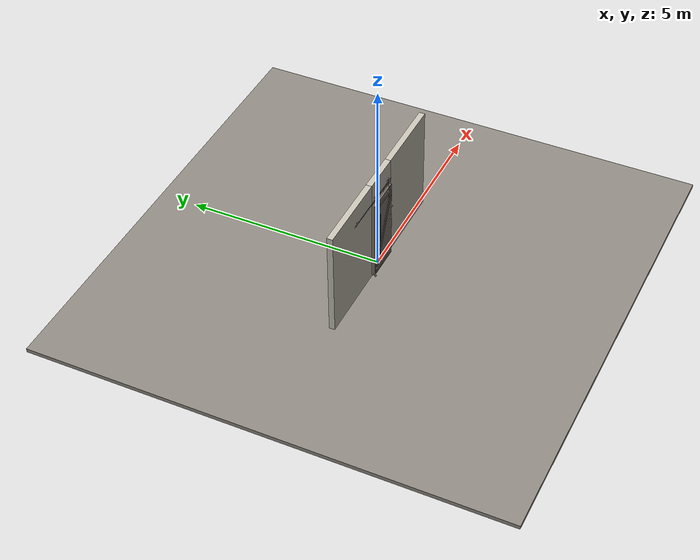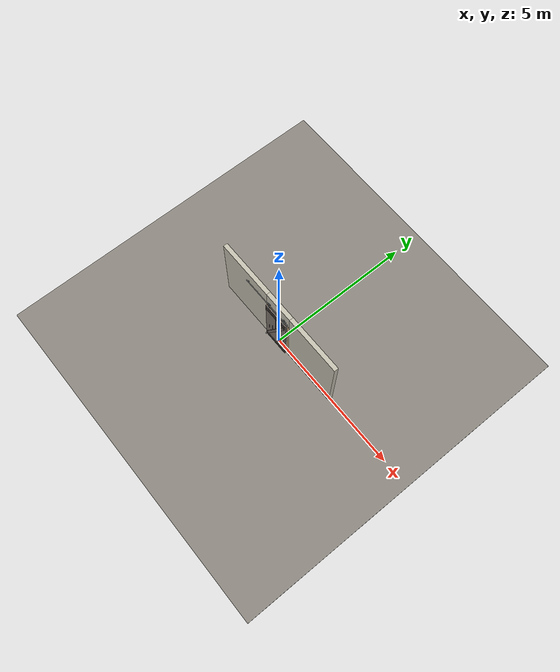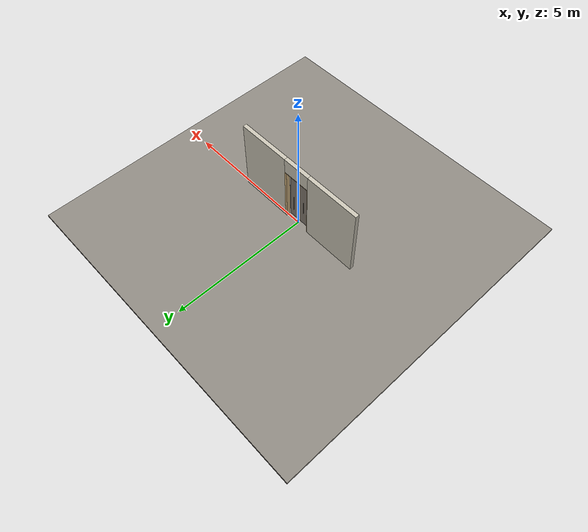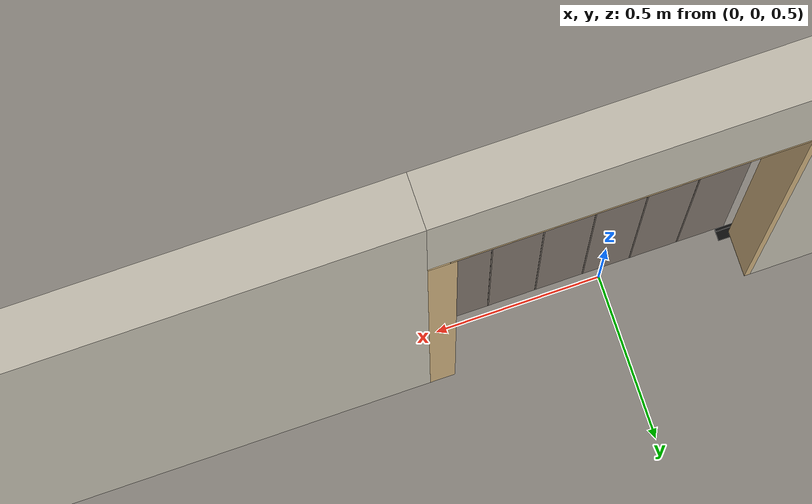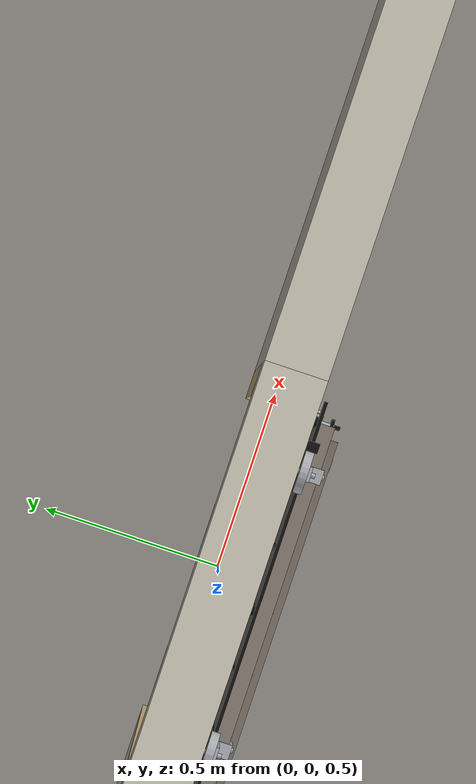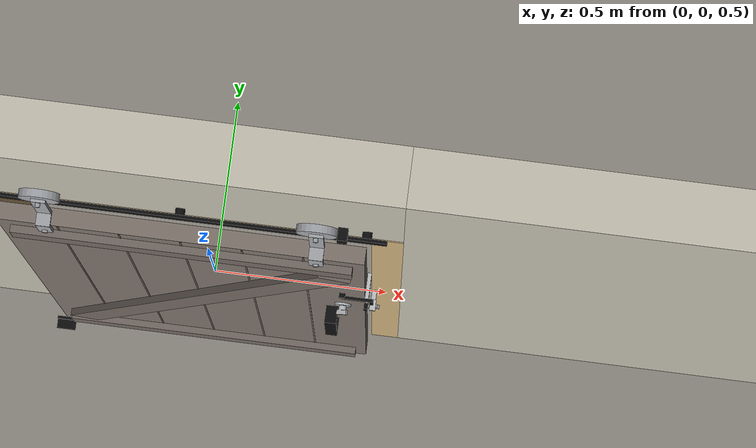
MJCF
<?xml version="1.0" ?>
<mujoco model="db0151_sliding_single_full">
  <compiler angle="radian" meshdir="../../hardware" texturedir="../../textures" autolimits="true" inertiafromgeom="false"/>
  <option timestep="0.002" integrator="implicitfast" cone="elliptic" impratio="10" noslip_iterations="3">
    <flag multiccd="enable"/>
  </option>
  <size memory="16M"/>
  <default>
    <geom condim="4" solref="0.005 1" solimp="0.95 0.99 0.001"/>
    <joint solreflimit="0.005 1" solimplimit="0.95 0.99 0.001"/>
    <tendon solreflimit="0.005 1"/>
    <equality solref="0.002 1"/>
  </default>
  <visual>
    <headlight ambient="0.4 0.4 0.4" diffuse="0.7 0.7 0.7" specular="0.2 0.2 0.2"/>
    <quality shadowsize="4096"/>
    <map znear="0.01" zfar="60"/>
  </visual>
  <asset>
    <mesh name="pull_2b47e55ff8" file="pull_2b47e55ff8.obj"/>
    <mesh name="thumbturn_eb5c9899a3" file="thumbturn_eb5c9899a3.obj"/>
    <material name="mat_floor" rgba="0.55 0.53 0.5 1" specular="0.2" shininess="0.15" reflectance="0"/>
    <material name="mat_wall" rgba="0.78 0.76 0.7 1" specular="0.2" shininess="0.1" reflectance="0"/>
    <material name="mat_frame" rgba="0.82 0.7 0.5 1" specular="0.2" shininess="0.45" reflectance="0"/>
    <material name="mat_track" rgba="0.05 0.05 0.05 1" specular="0.38" shininess="0.3" reflectance="0.12"/>
    <material name="mat_leaf" rgba="0.5 0.46 0.425 1" specular="0.2" shininess="0.15" reflectance="0"/>
    <material name="mat_leaf_brace" rgba="0.45 0.414 0.383 1" specular="0.2" shininess="0.2" reflectance="0"/>
    <material name="mat_roller" rgba="0.65 0.66 0.68 1" specular="0.74" shininess="0.5" reflectance="0.36"/>
    <material name="mat_op_black_matte_metal" rgba="0.05 0.05 0.05 1" specular="0.38" shininess="0.3" reflectance="0.12"/>
    <material name="mat_teardrop" rgba="0.05 0.05 0.05 1" specular="0.38" shininess="0.3" reflectance="0.12"/>
    <material name="mat_hook" rgba="0.75 0.76 0.77 1" specular="0.8" shininess="0.65" reflectance="0.4"/>
    <texture name="skybox" type="skybox" builtin="gradient" rgb1="0.6 0.7 0.85" rgb2="0.9 0.92 0.95" width="256" height="256"/>
  </asset>
  <worldbody>
    <light name="sun" pos="1.5 -2.5 4" dir="-0.3 0.5 -0.8" directional="true" diffuse="0.8 0.8 0.8" specular="0.3 0.3 0.3" castshadow="true"/>
    <light name="fill" pos="-1.5 2.5 3" dir="0.3 -0.5 -0.7" directional="true" diffuse="0.35 0.35 0.4" castshadow="false"/>
    <camera name="robot_view" pos="0 -2.644375 1.817425" xyaxes="1 0 0 0 0.26963 0.962964" fovy="52"/>
    <camera name="far_view" pos="0 2.644375 1.817425" xyaxes="-1 0 0 0 -0.26963 0.962964" fovy="52"/>
    <camera name="iso" pos="2.009725 -2.221275 2.240525" xyaxes="0.741536 0.670913 0 -0.242917 0.268487 0.932151" fovy="46"/>
    <camera name="detail_handle" pos="0.547 -0.9815 1.33" xyaxes="0.97561 0.219512 0 -0.070934 0.315262 0.94635" fovy="38"/>
    <geom name="floor" type="box" size="6 6 0.05" pos="0 0 -0.05" material="mat_floor" group="0" contype="1" conaffinity="1" friction="0.8 0.005 0.0001" density="2400"/>
    <geom name="wall_left" type="box" size="1.007 0.0725 1.377" pos="-1.493 0 1.377" material="mat_wall" group="0" contype="1" conaffinity="1" friction="0.6 0.005 0.0001" density="800"/>
    <geom name="wall_right" type="box" size="0.977 0.0725 1.377" pos="1.523 0 1.377" material="mat_wall" group="0" contype="1" conaffinity="1" friction="0.6 0.005 0.0001" density="800"/>
    <geom name="wall_header" type="box" size="0.516 0.0725 0.2905" pos="0.03 0 2.4635" material="mat_wall" group="0" contype="1" conaffinity="1" friction="0.6 0.005 0.0001" density="800"/>
    <geom name="jamb_l" type="box" size="0.0095 0.0725 1.077" pos="-0.4765 0 1.077" material="mat_frame" group="0" contype="1" conaffinity="1" friction="0.6 0.005 0.0001" density="300"/>
    <geom name="jamb_head" type="box" size="0.486 0.0725 0.0095" pos="0 0 2.1635" material="mat_frame" group="0" contype="1" conaffinity="1" friction="0.6 0.005 0.0001" density="300"/>
    <geom name="flat_track" type="box" size="0.964 0.004 0.02" pos="-0.457 -0.0945 2.274" material="mat_track" group="0" contype="1" conaffinity="1" friction="0.6 0.005 0.0001" density="7850"/>
    <geom name="track_standoff_0" type="cylinder" size="0.012 0.009" pos="-1.371 -0.0815 2.274" quat="0.707107 -0.707107 0 0" material="mat_track" group="1" contype="0" conaffinity="0" density="7850"/>
    <geom name="track_standoff_1" type="cylinder" size="0.012 0.009" pos="-0.914 -0.0815 2.274" quat="0.707107 -0.707107 0 0" material="mat_track" group="1" contype="0" conaffinity="0" density="7850"/>
    <geom name="track_standoff_2" type="cylinder" size="0.012 0.009" pos="-0.457 -0.0815 2.274" quat="0.707107 -0.707107 0 0" material="mat_track" group="1" contype="0" conaffinity="0" density="7850"/>
    <geom name="track_standoff_3" type="cylinder" size="0.012 0.009" pos="0 -0.0815 2.274" quat="0.707107 -0.707107 0 0" material="mat_track" group="1" contype="0" conaffinity="0" density="7850"/>
    <geom name="track_standoff_4" type="cylinder" size="0.012 0.009" pos="0.457 -0.0815 2.274" quat="0.707107 -0.707107 0 0" material="mat_track" group="1" contype="0" conaffinity="0" density="7850"/>
    <geom name="leaf_track_stop_l" type="box" size="0.012 0.016 0.027" pos="-1.313 -0.0945 2.319" material="mat_track" group="0" contype="1" conaffinity="1" friction="0.6 0.005 0.0001" density="7850"/>
    <geom name="leaf_track_stop_r" type="box" size="0.012 0.016 0.027" pos="0.399 -0.0945 2.319" material="mat_track" group="0" contype="1" conaffinity="1" friction="0.6 0.005 0.0001" density="7850"/>
    <geom name="leaf_teardrop_keeper_post" type="box" size="0.005 0.006 0.018" pos="0.462 -0.1465 1.466" material="mat_teardrop" group="0" contype="1" conaffinity="1" friction="0.6 0.005 0.0001" density="7800"/>
    <geom name="leaf_teardrop_keeper_base" type="box" size="0.005 0.008 0.02" pos="0.462 -0.1605 1.47" material="mat_teardrop" group="1" contype="0" conaffinity="0" density="7800"/>
    <geom name="leaf_hook_keeper" type="box" size="0.008 0.015 0.006" pos="0.475 -0.1145 1.13" material="mat_hook" group="0" contype="1" conaffinity="1" friction="0.6 0.005 0.0001" density="7900"/>
    <geom name="jamb_latch_0" type="box" size="0.0395 0.0725 1.077" pos="0.5065 0 1.077" material="mat_frame" group="0" contype="1" conaffinity="1" friction="0.6 0.005 0.0001" density="300"/>
    <geom name="floor_guide_n" type="box" size="0.028 0.004 0.009" pos="-0.457 -0.1415 0.009" material="mat_track" group="0" contype="1" conaffinity="1" friction="0.6 0.005 0.0001" density="7850"/>
    <geom name="floor_guide_n_foot" type="box" size="0.028 0.018 0.002" pos="-0.457 -0.1555 0.002" material="mat_track" group="0" contype="1" conaffinity="1" friction="0.6 0.005 0.0001" density="7850"/>
    <geom name="floor_guide_p" type="box" size="0.028 0.004 0.009" pos="-0.457 -0.0875 0.009" material="mat_track" group="0" contype="1" conaffinity="1" friction="0.6 0.005 0.0001" density="7850"/>
    <geom name="floor_guide_p_foot" type="box" size="0.028 0.018 0.002" pos="-0.457 -0.0735 0.002" material="mat_track" group="0" contype="1" conaffinity="1" friction="0.6 0.005 0.0001" density="7850"/>
    <geom name="leaf_teardrop_keeper_base_arm" type="box" size="0.005 0.0405 0.016" pos="0.462 -0.1125 1.47" material="mat_hook" group="1" contype="0" conaffinity="0" density="7850"/>
    <geom name="leaf_hook_keeper_bracket" type="box" size="0.0064 0.014 0.005" pos="0.475 -0.086 1.13" material="mat_hook" group="1" contype="0" conaffinity="0" density="7850"/>
    <site name="approach_point" pos="0 -1.5 0" quat="1 0 0 0" size="0.05" rgba="0.2 0.9 0.2 0.5" group="4"/>
    <site name="goal_point" pos="0 1.5 0" quat="1 0 0 0" size="0.05" rgba="0.2 0.9 0.2 0.5" group="4"/>
    <site name="door_plane_center" pos="0 0 1.077" quat="1 0 0 0" size="0.02" rgba="0.2 0.9 0.2 0.5" group="4"/>
    <body name="leaf" pos="0 -0.1145 0">
      <inertial pos="0.004131 0.000126 1.189862" mass="42.140622" quat="0.500154 0.500562 0.498279 -0.501001" diaginertia="3.146790564 19.49762241 22.626119969"/>
      <joint name="leaf_slide" type="slide" axis="-1 0 0" limited="true" range="0 0.914" damping="4.125703" frictionloss="8.338409" armature="0.5"/>
      <geom name="leaf_slab" type="box" size="0.457 0.022 1.067" pos="0 0 1.079" material="mat_leaf" group="0" contype="1" conaffinity="1" friction="0.45 0.005 0.0001" density="1"/>
      <geom name="leaf_plank_gap_1" type="box" size="0.002 0.023 1.057" pos="-0.304667 0 1.079" material="mat_leaf_brace" group="1" contype="0" conaffinity="0" density="1"/>
      <geom name="leaf_plank_gap_2" type="box" size="0.002 0.023 1.057" pos="-0.152333 0 1.079" material="mat_leaf_brace" group="1" contype="0" conaffinity="0" density="1"/>
      <geom name="leaf_plank_gap_3" type="box" size="0.002 0.023 1.057" pos="0 0 1.079" material="mat_leaf_brace" group="1" contype="0" conaffinity="0" density="1"/>
      <geom name="leaf_plank_gap_4" type="box" size="0.002 0.023 1.057" pos="0.152333 0 1.079" material="mat_leaf_brace" group="1" contype="0" conaffinity="0" density="1"/>
      <geom name="leaf_plank_gap_5" type="box" size="0.002 0.023 1.057" pos="0.304667 0 1.079" material="mat_leaf_brace" group="1" contype="0" conaffinity="0" density="1"/>
      <geom name="leaf_batten_13" type="box" size="0.427 0.01 0.045" pos="0 -0.032 0.132" material="mat_leaf_brace" group="1" contype="0" conaffinity="0" density="1"/>
      <geom name="leaf_batten_202" type="box" size="0.427 0.01 0.045" pos="0 -0.032 2.026" material="mat_leaf_brace" group="1" contype="0" conaffinity="0" density="1"/>
      <geom name="leaf_brace_z" type="box" size="0.920466 0.01 0.045" pos="0 -0.032 1.079" quat="0.841163 0 -0.540782 0" material="mat_leaf_brace" group="1" contype="0" conaffinity="0" density="1"/>
      <geom name="leaf_hanger_wheel_0" type="cylinder" size="0.05 0.01" pos="-0.337 0.02 2.344" quat="0.707107 -0.707107 0 0" material="mat_roller" group="1" contype="0" conaffinity="0" density="7850"/>
      <geom name="leaf_hanger_mount_0" type="box" size="0.018 0.004 0.0725" pos="-0.337 -0.026 2.0985" material="mat_roller" group="1" contype="0" conaffinity="0" density="7850"/>
      <geom name="leaf_hanger_strap_0" type="box" size="0.018 0.004 0.0925" pos="-0.337 0.006 2.2635" material="mat_roller" group="1" contype="0" conaffinity="0" density="7850"/>
      <geom name="leaf_hanger_bend_0" type="box" size="0.018 0.02 0.004" pos="-0.337 -0.01 2.171" material="mat_roller" group="1" contype="0" conaffinity="0" density="7850"/>
      <geom name="leaf_hanger_axle_0" type="cylinder" size="0.006 0.021" pos="-0.337 0.013 2.344" quat="0.707107 -0.707107 0 0" material="mat_roller" group="1" contype="0" conaffinity="0" density="7850"/>
      <geom name="leaf_hanger_bolt_0_90" type="cylinder" size="0.007 0.004" pos="-0.337 -0.032 2.056" quat="0.707107 -0.707107 0 0" material="mat_roller" group="1" contype="0" conaffinity="0" density="7850"/>
      <geom name="leaf_hanger_bolt_0_45" type="cylinder" size="0.007 0.004" pos="-0.337 -0.032 2.101" quat="0.707107 -0.707107 0 0" material="mat_roller" group="1" contype="0" conaffinity="0" density="7850"/>
      <geom name="leaf_hanger_wheel_1" type="cylinder" size="0.05 0.01" pos="0.337 0.02 2.344" quat="0.707107 -0.707107 0 0" material="mat_roller" group="1" contype="0" conaffinity="0" density="7850"/>
      <geom name="leaf_hanger_mount_1" type="box" size="0.018 0.004 0.0725" pos="0.337 -0.026 2.0985" material="mat_roller" group="1" contype="0" conaffinity="0" density="7850"/>
      <geom name="leaf_hanger_strap_1" type="box" size="0.018 0.004 0.0925" pos="0.337 0.006 2.2635" material="mat_roller" group="1" contype="0" conaffinity="0" density="7850"/>
      <geom name="leaf_hanger_bend_1" type="box" size="0.018 0.02 0.004" pos="0.337 -0.01 2.171" material="mat_roller" group="1" contype="0" conaffinity="0" density="7850"/>
      <geom name="leaf_hanger_axle_1" type="cylinder" size="0.006 0.021" pos="0.337 0.013 2.344" quat="0.707107 -0.707107 0 0" material="mat_roller" group="1" contype="0" conaffinity="0" density="7850"/>
      <geom name="leaf_hanger_bolt_1_90" type="cylinder" size="0.007 0.004" pos="0.337 -0.032 2.056" quat="0.707107 -0.707107 0 0" material="mat_roller" group="1" contype="0" conaffinity="0" density="7850"/>
      <geom name="leaf_hanger_bolt_1_45" type="cylinder" size="0.007 0.004" pos="0.337 -0.032 2.101" quat="0.707107 -0.707107 0 0" material="mat_roller" group="1" contype="0" conaffinity="0" density="7850"/>
      <geom name="leaf_pull_n" type="mesh" mesh="pull_2b47e55ff8" pos="0.367 -0.022 1.05" quat="0.707107 0.707107 0 0" material="mat_op_black_matte_metal" group="1" contype="0" conaffinity="0" density="3000"/>
      <geom name="leaf_pull_col_n" type="capsule" size="0.006 0.13" pos="0.367 -0.067 1.05" material="mat_op_black_matte_metal" group="3" contype="1" conaffinity="1" rgba="0.8 0.3 0.3 0.25" friction="0.7 0.01 0.0001" density="3000"/>
      <geom name="leaf_hook_faceplate" type="box" size="0.0006 0.011 0.045" pos="0.4564 0 1.13" material="mat_hook" group="1" contype="0" conaffinity="0" density="7900"/>
      <site name="leaf_pull_grip_n" pos="0.367 -0.067 1.05" quat="1 0 0 0" size="0.012" rgba="0.2 0.9 0.2 0.5" group="4"/>
      <site name="leaf_edge_mid" pos="0.457 0 1.079" quat="1 0 0 0" size="0.02" rgba="0.2 0.9 0.2 0.5" group="4"/>
      <body name="leaf_teardrop" pos="0.397 -0.032 1.5">
        <inertial pos="0.043422 0.00123 -0.01162" mass="0.122437" quat="0.688754 0.704878 0.099431 -0.137401" diaginertia="0.000019179 0.000140472 0.000156801"/>
        <joint name="leaf_teardrop_hinge" type="hinge" axis="0 -1 0" limited="true" range="0 1.4" damping="0.005199" frictionloss="0.004386" armature="0.0001"/>
        <geom name="leaf_teardrop_top" type="box" size="0.04 0.004 0.006" pos="0.04 0 -0.005" material="mat_teardrop" group="0" contype="1" conaffinity="1" friction="0.6 0.005 0.0001" density="7800"/>
        <geom name="leaf_teardrop_end" type="box" size="0.005 0.004 0.03" pos="0.078 0 -0.03" material="mat_teardrop" group="0" contype="1" conaffinity="1" friction="0.6 0.005 0.0001" density="7800"/>
        <geom name="leaf_teardrop_boss" type="cylinder" size="0.008 0.008" pos="0 0.006 0" quat="0.707107 -0.707107 0 0" material="mat_teardrop" group="1" contype="0" conaffinity="0" density="7800"/>
        <site name="leaf_teardrop_grip" pos="0.078 -0.01 -0.05" quat="1 0 0 0" size="0.01" rgba="0.2 0.9 0.2 0.5" group="4"/>
      </body>
      <body name="leaf_hook_thumbturn" pos="0.397 -0.022 1.27">
        <inertial pos="0 -0.012928 0" mass="0.178946" quat="0.678504 0.199079 -0.199079 -0.678504" diaginertia="0.000026045 0.000026215 0.000032438"/>
        <joint name="leaf_hook_thumbturn_hinge" type="hinge" axis="0 1 0" limited="true" range="0 1" damping="0.05" frictionloss="0.25" armature="0.005" ref="1"/>
        <geom name="leaf_hook_tt_mesh" type="mesh" mesh="thumbturn_eb5c9899a3" pos="0 0 0" quat="0.620545 0.620545 0.339005 -0.339005" material="mat_hook" group="0" contype="1" conaffinity="1" friction="0.6 0.005 0.0001" density="7100"/>
        <geom name="leaf_hook_tt_col" type="box" size="0.006 0.012 0.016" pos="0 -0.02 0" quat="0.877583 0 0.479426 0" material="mat_hook" group="3" contype="1" conaffinity="1" rgba="0.8 0.3 0.3 0.25" friction="0.6 0.005 0.0001" density="7100"/>
        <site name="leaf_hook_tt_grip" pos="0 -0.03 0" quat="0.877583 0 0.479426 0" size="0.01" rgba="0.2 0.9 0.2 0.5" group="4"/>
      </body>
      <body name="leaf_hook" pos="0.457 0 1.13">
        <inertial pos="0.006651 0 -0.027503" mass="0.072048" quat="-0.148813 -0.148813 0.69127 -0.69127" diaginertia="0.000005266 0.00001511 0.000019175"/>
        <joint name="leaf_hook_hinge" type="hinge" axis="0 1 0" limited="true" range="0 1" damping="0.05" frictionloss="0.1" armature="0.005" ref="1"/>
        <geom name="leaf_hook_arm" type="box" size="0.022 0.005 0.006" pos="-0.002657 0 -0.025474" quat="0.877583 0 0.479426 0" material="mat_hook" group="0" contype="1" conaffinity="1" friction="0.6 0.005 0.0001" density="7900"/>
        <geom name="leaf_hook_tip" type="box" size="0.006 0.005 0.016" pos="0.019451 0 -0.030293" quat="0.877583 0 0.479426 0" material="mat_hook" group="0" contype="1" conaffinity="1" friction="0.6 0.005 0.0001" density="7900"/>
      </body>
    </body>
  </worldbody>
  <equality>
    <joint name="leaf_hook_couple" joint1="leaf_hook_hinge" joint2="leaf_hook_thumbturn_hinge" polycoef="0 1 0 0 0" active="true"/>
  </equality>
  <sensor>
    <jointpos name="leaf_slide_pos" joint="leaf_slide"/>
    <jointvel name="leaf_slide_vel" joint="leaf_slide"/>
    <jointpos name="leaf_teardrop_hinge_pos" joint="leaf_teardrop_hinge"/>
    <jointvel name="leaf_teardrop_hinge_vel" joint="leaf_teardrop_hinge"/>
    <jointpos name="leaf_hook_thumbturn_hinge_pos" joint="leaf_hook_thumbturn_hinge"/>
    <jointvel name="leaf_hook_thumbturn_hinge_vel" joint="leaf_hook_thumbturn_hinge"/>
    <jointpos name="leaf_hook_hinge_pos" joint="leaf_hook_hinge"/>
    <jointvel name="leaf_hook_hinge_vel" joint="leaf_hook_hinge"/>
  </sensor>
</mujoco>
